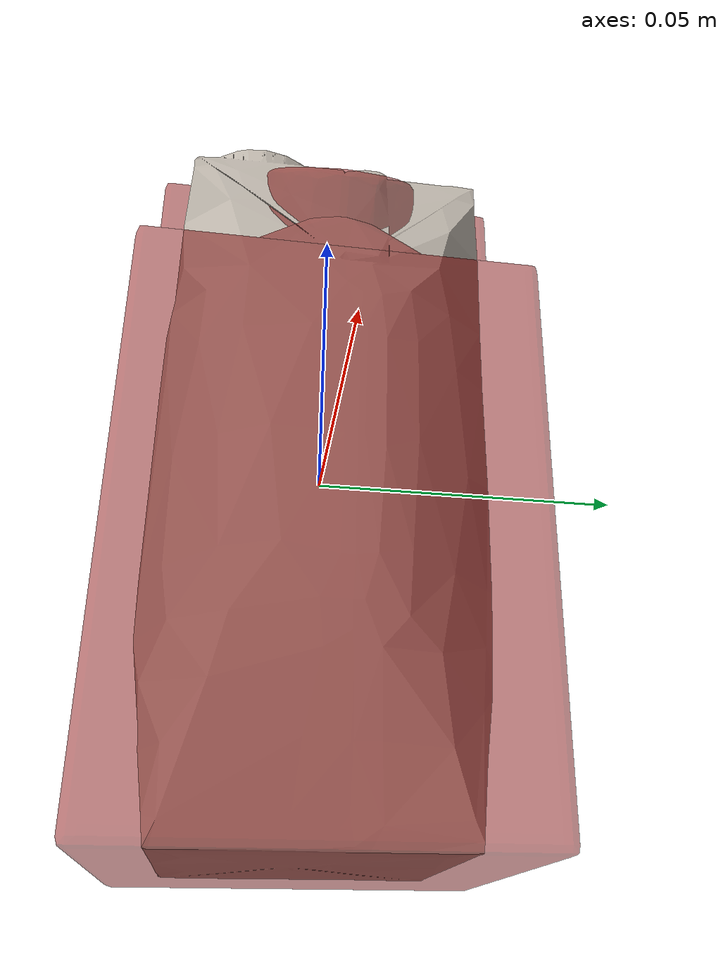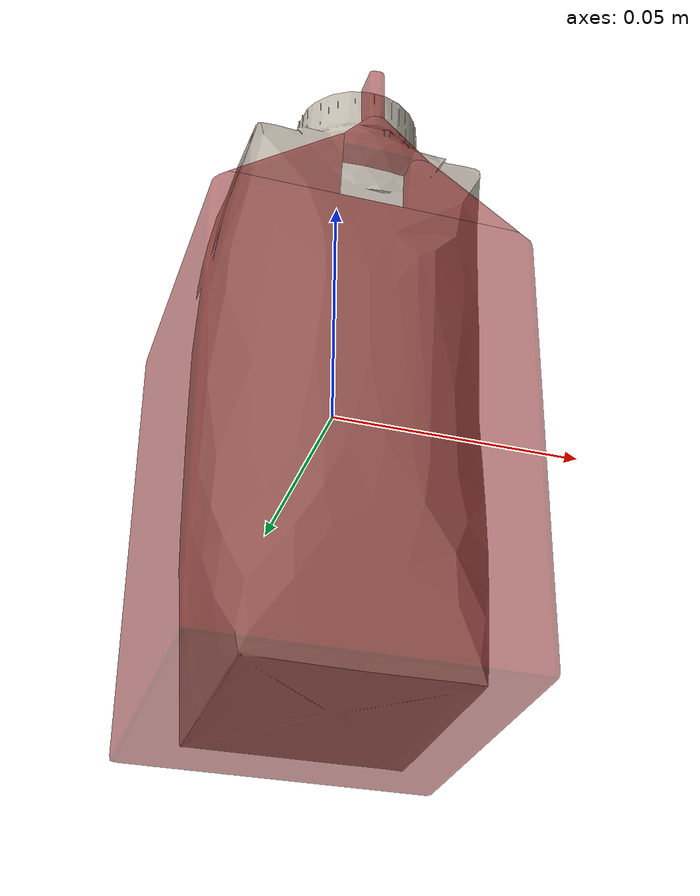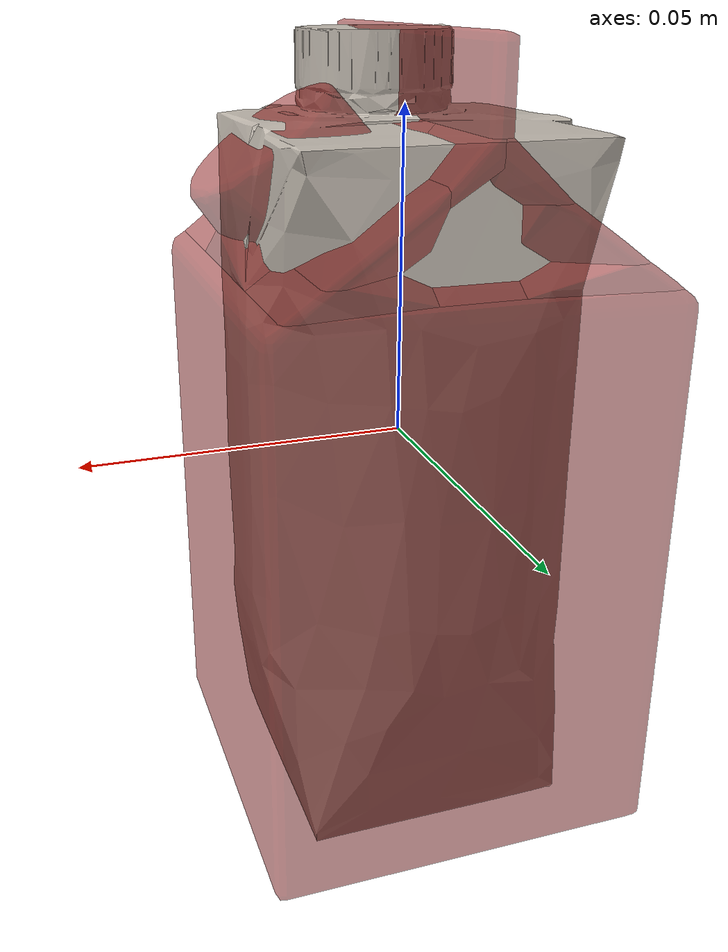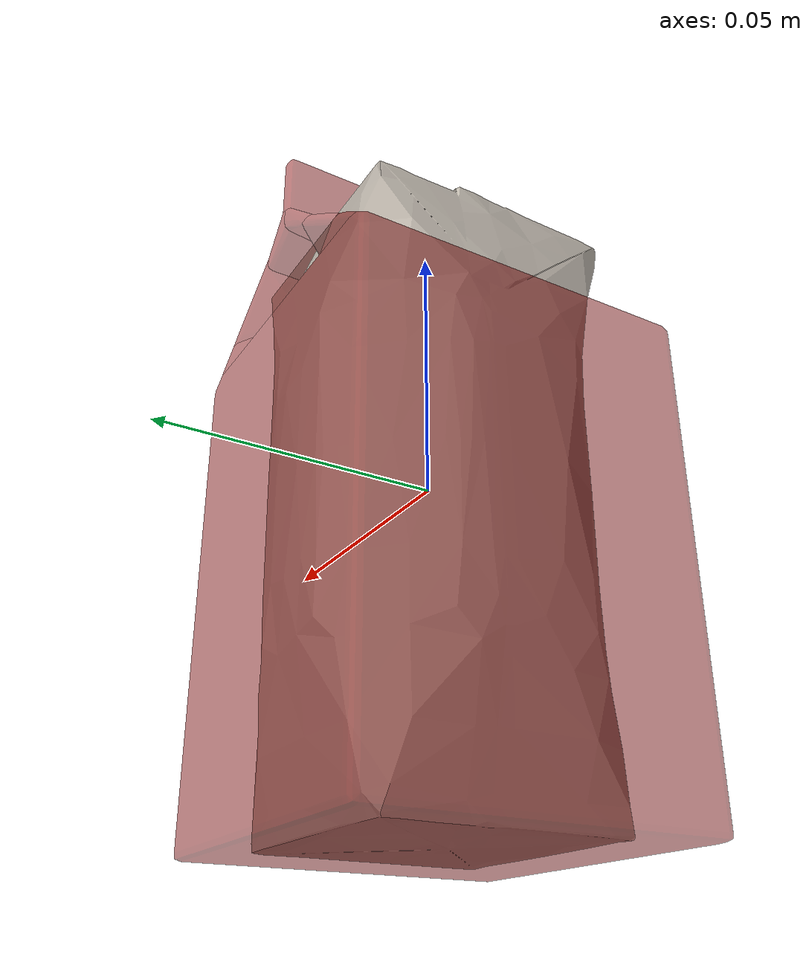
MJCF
<?xml version='1.0' encoding='utf-8'?>
<mujoco model="milk_17">
  <asset>
    <mesh file="visual/model_normalized_0.obj" name="model_normalized_0_vis" scale="0.11999999999999993 0.11999999999999993 0.11999999999999993" refquat="1.0 0.0 0.0 0.0" />
    <texture type="2d" name="image0" file="visual/image0.png" />
    <material name="basic" texture="image0" specular="0.5" shininess="1.0" />
    <mesh file="collision/collision_mesh_collision_0.obj" name="milk_collision_mesh_0" scale="0.11999999999999993 0.11999999999999993 0.11999999999999993" refquat="1.0 0.0 0.0 0.0" />
    <mesh file="collision/collision_mesh_collision_1.obj" name="milk_collision_mesh_1" scale="0.11999999999999993 0.11999999999999993 0.11999999999999993" refquat="1.0 0.0 0.0 0.0" />
    <mesh file="collision/collision_mesh_collision_2.obj" name="milk_collision_mesh_2" scale="0.11999999999999993 0.11999999999999993 0.11999999999999993" refquat="1.0 0.0 0.0 0.0" />
    <mesh file="collision/collision_mesh_collision_3.obj" name="milk_collision_mesh_3" scale="0.11999999999999993 0.11999999999999993 0.11999999999999993" refquat="1.0 0.0 0.0 0.0" />
    <mesh file="collision/collision_mesh_collision_4.obj" name="milk_collision_mesh_4" scale="0.11999999999999993 0.11999999999999993 0.11999999999999993" refquat="1.0 0.0 0.0 0.0" />
    <mesh file="collision/collision_mesh_collision_5.obj" name="milk_collision_mesh_5" scale="0.11999999999999993 0.11999999999999993 0.11999999999999993" refquat="1.0 0.0 0.0 0.0" />
    <mesh file="collision/collision_mesh_collision_6.obj" name="milk_collision_mesh_6" scale="0.11999999999999993 0.11999999999999993 0.11999999999999993" refquat="1.0 0.0 0.0 0.0" />
    <mesh file="collision/collision_mesh_collision_7.obj" name="milk_collision_mesh_7" scale="0.11999999999999993 0.11999999999999993 0.11999999999999993" refquat="1.0 0.0 0.0 0.0" />
    <mesh file="collision/collision_mesh_collision_8.obj" name="milk_collision_mesh_8" scale="0.11999999999999993 0.11999999999999993 0.11999999999999993" refquat="1.0 0.0 0.0 0.0" />
    <mesh file="collision/collision_mesh_collision_9.obj" name="milk_collision_mesh_9" scale="0.11999999999999993 0.11999999999999993 0.11999999999999993" refquat="1.0 0.0 0.0 0.0" />
    <mesh file="collision/collision_mesh_collision_10.obj" name="milk_collision_mesh_10" scale="0.11999999999999993 0.11999999999999993 0.11999999999999993" refquat="1.0 0.0 0.0 0.0" />
    <mesh file="collision/collision_mesh_collision_11.obj" name="milk_collision_mesh_11" scale="0.11999999999999993 0.11999999999999993 0.11999999999999993" refquat="1.0 0.0 0.0 0.0" />
    <mesh file="collision/collision_mesh_collision_12.obj" name="milk_collision_mesh_12" scale="0.11999999999999993 0.11999999999999993 0.11999999999999993" refquat="1.0 0.0 0.0 0.0" />
    <mesh file="collision/collision_mesh_collision_13.obj" name="milk_collision_mesh_13" scale="0.11999999999999993 0.11999999999999993 0.11999999999999993" refquat="1.0 0.0 0.0 0.0" />
    <mesh file="collision/collision_mesh_collision_14.obj" name="milk_collision_mesh_14" scale="0.11999999999999993 0.11999999999999993 0.11999999999999993" refquat="1.0 0.0 0.0 0.0" />
    <mesh file="collision/collision_mesh_collision_15.obj" name="milk_collision_mesh_15" scale="0.11999999999999993 0.11999999999999993 0.11999999999999993" refquat="1.0 0.0 0.0 0.0" />
  </asset>
  <default>
    <default class="region">
      <geom group="1" conaffinity="0" contype="0" rgba="0 1 0 0" mass="0" />
    </default>
    <default class="collision">
      <geom group="0" rgba="0.5 0 0 0.5" density="1309.021080189" />
    </default>
  </default>
  <worldbody>
    <body>
      <body name="object">
        <geom solimp="0.998 0.998 0.001" solref="0.001 1" density="130.902108019" friction="0.95 0.3 0.1" type="mesh" mesh="model_normalized_0_vis" conaffinity="0" contype="0" group="1" material="basic" />
        <geom class="region" name="reg_bbox" type="box" pos="-0.00012443880000000178 0.0 -8.265000000002849e-06" size="0.03148867799999998 0.03066000239999998 0.06064308299999996" />
        <geom mesh="milk_collision_mesh_0" type="mesh" class="collision" />
        <geom mesh="milk_collision_mesh_1" type="mesh" class="collision" />
        <geom mesh="milk_collision_mesh_2" type="mesh" class="collision" />
        <geom mesh="milk_collision_mesh_3" type="mesh" class="collision" />
        <geom mesh="milk_collision_mesh_4" type="mesh" class="collision" />
        <geom mesh="milk_collision_mesh_5" type="mesh" class="collision" />
        <geom mesh="milk_collision_mesh_6" type="mesh" class="collision" />
        <geom mesh="milk_collision_mesh_7" type="mesh" class="collision" />
        <geom mesh="milk_collision_mesh_8" type="mesh" class="collision" />
        <geom mesh="milk_collision_mesh_9" type="mesh" class="collision" />
        <geom mesh="milk_collision_mesh_10" type="mesh" class="collision" />
        <geom mesh="milk_collision_mesh_11" type="mesh" class="collision" />
        <geom mesh="milk_collision_mesh_12" type="mesh" class="collision" />
        <geom mesh="milk_collision_mesh_13" type="mesh" class="collision" />
        <geom mesh="milk_collision_mesh_14" type="mesh" class="collision" />
        <geom mesh="milk_collision_mesh_15" type="mesh" class="collision" />
      </body>
    </body>
  </worldbody>
</mujoco>
